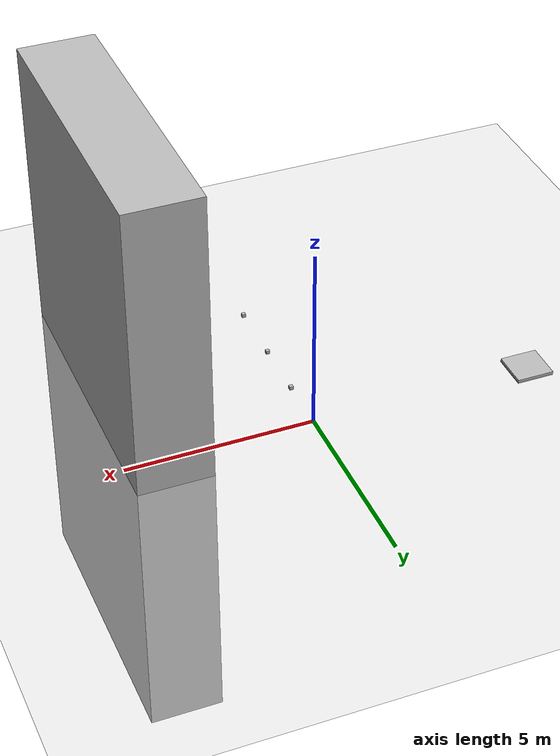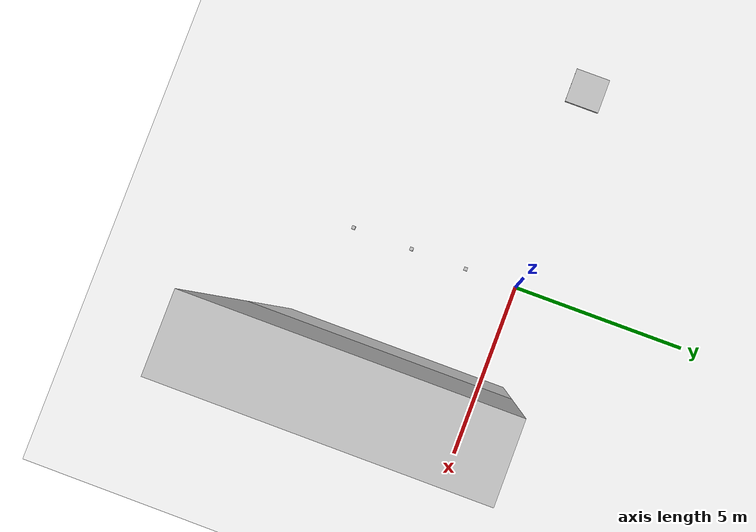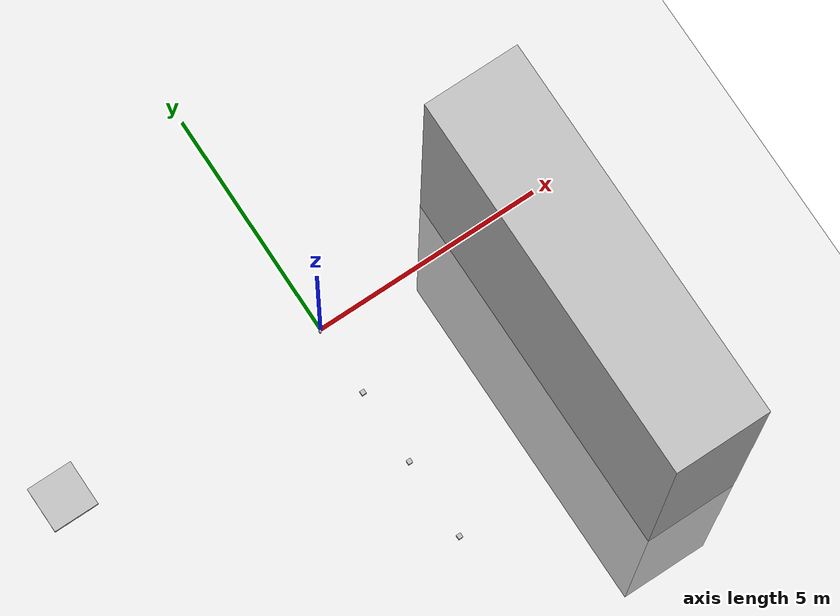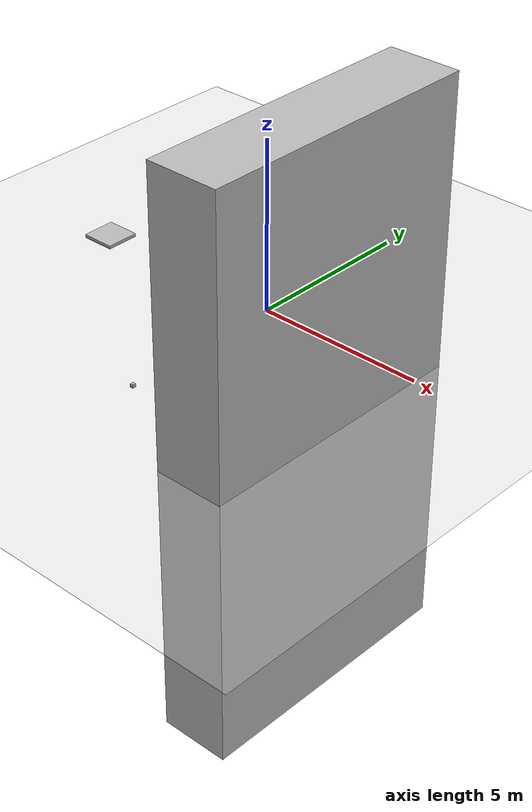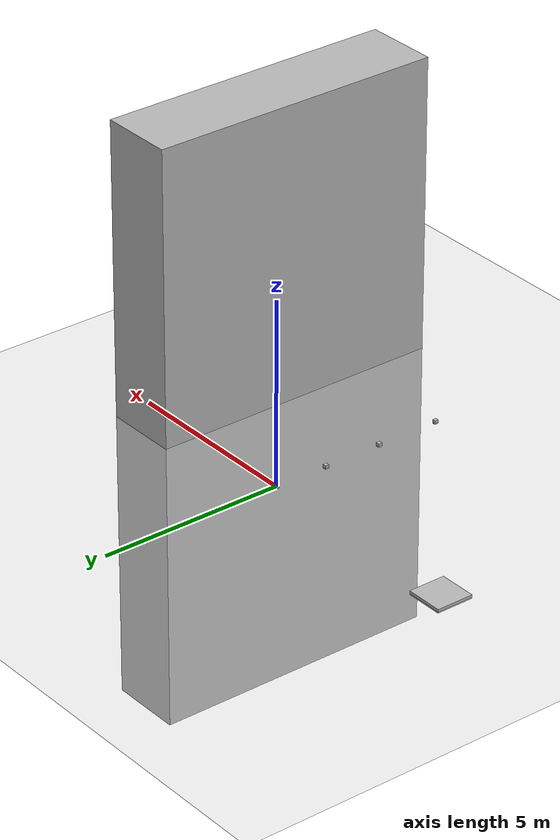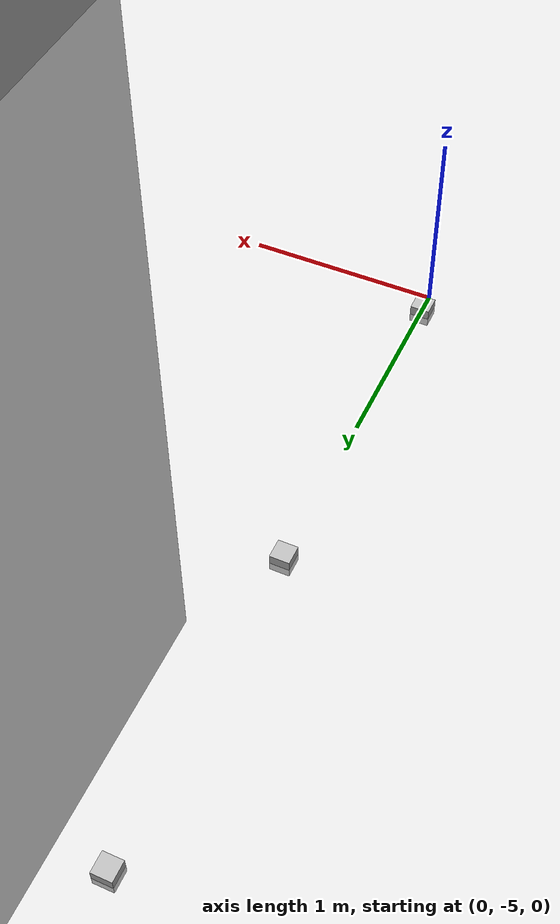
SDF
<sdf version="1.6">
 <world name="default">
  <physics type="ode">
   <ode>
    <solver><type>quick</type><iters>250</iters><sor>1.3</sor></solver>
    <constraints>
     <cfm>0.0</cfm>
     <erp>0.2</erp>
     <contact_max_correcting_vel>0.1</contact_max_correcting_vel>
     <contact_surface_layer>0.0</contact_surface_layer>
    </constraints>
   </ode>
   <max_step_size>0.001</max_step_size>
   <real_time_factor>1</real_time_factor>
   <real_time_update_rate>1000</real_time_update_rate>
  </physics>
  <include><uri>model://sun</uri></include>
  <model name="ground_plane">
   <static>true</static>
   <link name="link">
    <collision name="collision">
     <geometry><plane><normal>0 0 1</normal><size>5000 5000</size></plane></geometry>
     <surface><friction><ode><mu>1</mu><mu2>1</mu2></ode></friction></surface>
    </collision>
    <visual name="runway">
     <pose>700 0 0.005 0 0 0</pose>
     <cast_shadows>false</cast_shadows>
     <geometry><plane><normal>0 0 1</normal><size>1829 45</size></plane></geometry>
     <material>
      <script><uri>file://media/materials/scripts/gazebo.material</uri><name>Gazebo/Runway</name></script>
     </material>
    </visual>
    <visual name="grass">
     <pose>0 0 -0.1 0 0 0</pose>
     <cast_shadows>false</cast_shadows>
     <geometry><plane><normal>0 0 1</normal><size>5000 5000</size></plane></geometry>
     <material>
      <script><uri>file://media/materials/scripts/gazebo.material</uri><name>Gazebo/Grass</name></script>
     </material>
    </visual>
   </link>
  </model>
  <model name="wall">
   <static>true</static>
   <pose>4 -3 0 0 0 0</pose>
   <link name="main">
    <collision name="c"><geometry><box><size>2 8 16</size></box></geometry></collision>
    <visual name="v">
     <plugin name="gazebo_rope_visual_plugin" filename="libgraffiti_visual_plugin.so"/>
     <geometry><box><size>2 8 16</size></box></geometry>
    </visual>
   </link>
  </model>
  <model name="anchor1">
   <static>true</static>
   <link name="main">
    <collision name="c"><geometry><box><size>0.1 0.1 0.1</size></box></geometry></collision>
    <visual name="v"><geometry><box><size>0.1 0.1 0.1</size></box></geometry></visual>
   </link>
  </model>
  <model name="anchor2">
   <static>true</static>
   <pose>0 -1.5 0 0 0 0</pose>
   <link name="main">
    <collision name="c"><geometry><box><size>0.1 0.1 0.1</size></box></geometry></collision>
    <visual name="v"><geometry><box><size>0.1 0.1 0.1</size></box></geometry></visual>
   </link>
  </model>
  <model name="anchor3">
   <static>true</static>
   <pose>0 -3.14 0 0 0 0</pose>
   <link name="main">
    <collision name="c"><geometry><box><size>0.1 0.1 0.1</size></box></geometry></collision>
    <visual name="v"><geometry><box><size>0.1 0.1 0.1</size></box></geometry></visual>
   </link>
  </model>
  <model name="anchor4">
   <static>true</static>
   <pose>0 -4.9 0 0 0 0</pose>
   <link name="main">
    <collision name="c"><geometry><box><size>0.1 0.1 0.1</size></box></geometry></collision>
    <visual name="v"><geometry><box><size>0.1 0.1 0.1</size></box></geometry></visual>
   </link>
  </model>
  <model name="step">
   <static>true</static>
   <pose>-6 0 0 0 0 0</pose>
   <link name="main">
    <collision name="c"><geometry><box><size>1 1 0.1</size></box></geometry></collision>
    <visual name="v"><geometry><box><size>1 1 0.1</size></box></geometry></visual>
   </link>
  </model>
 </world>
</sdf>
